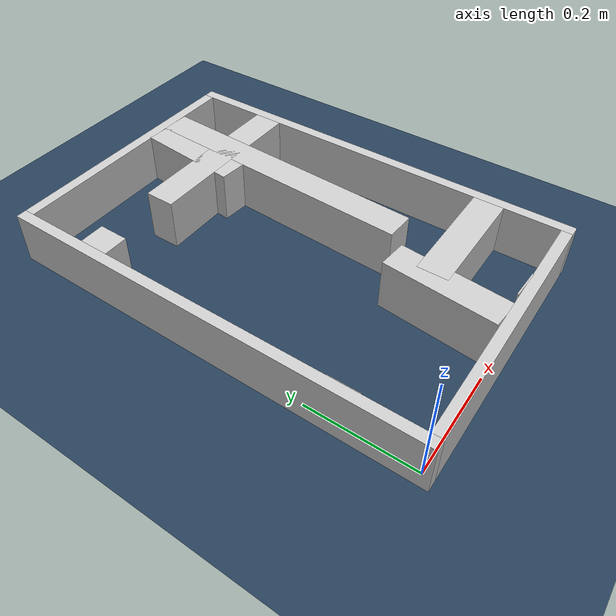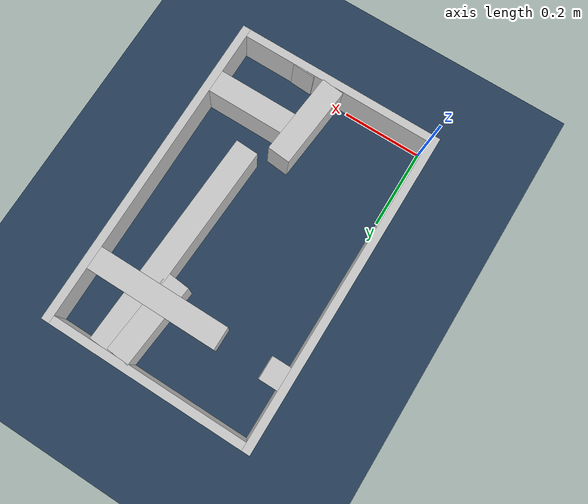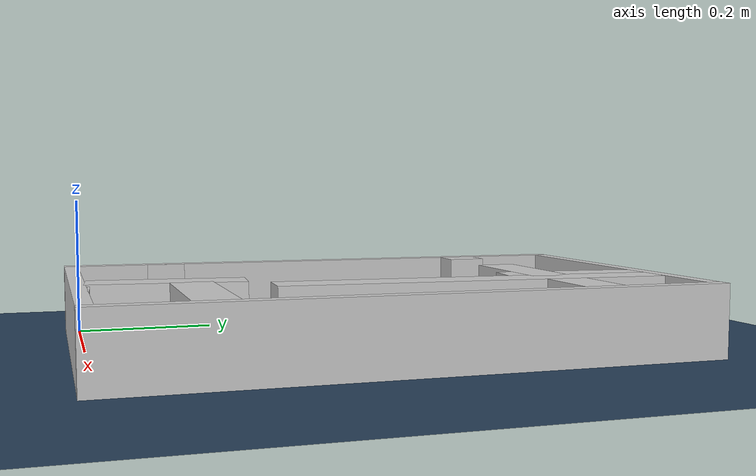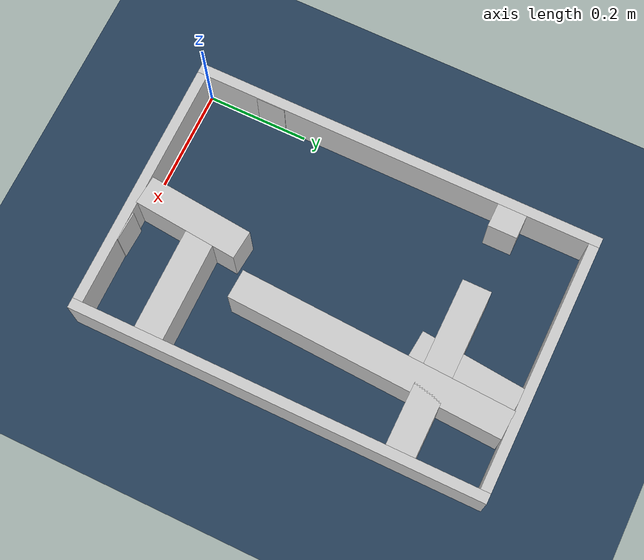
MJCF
<?xml version="1.0" ?>
<mujoco model="generated_real_template">
  <compiler angle="degree"/>
  <option timestep="0.002" integrator="implicitfast" iterations="100" cone="elliptic"/>
  <default>
    <geom density="1"/>
  </default>
  <asset>
    <texture builtin="gradient" height="3072" rgb1="0.3 0.5 0.7" rgb2="0 0 0" type="skybox" width="512"/>
    <texture builtin="checker" height="300" mark="edge" markrgb="0.8 0.8 0.8" name="groundplane" rgb1="0.2 0.3 0.4" rgb2="0.1 0.2 0.3" type="2d" width="300"/>
    <material name="groundplane" reflectance="0.2" texrepeat="5 5" texture="groundplane" texuniform="true"/>
  </asset>
  <worldbody>
    <light dir="0 0 -1" directional="true" pos="0 0 1.5"/>
    <geom name="floor" type="plane" condim="4" friction="0.5 0.005 0.001" material="groundplane" size="0 0 0.05"/>
    <body name="walls">
      <geom name="wall_boundary_left" type="box" condim="4" friction="1.0 0.005 0.0001" rgba="0.8 0.8 0.8 1" pos="-0.010000 0.387500 0.050000" euler="0 0 0.000000" size="0.010000 0.407500 0.050000"/>
      <geom name="wall_boundary_right" type="box" condim="4" friction="1.0 0.005 0.0001" rgba="0.8 0.8 0.8 1" pos="0.500000 0.387500 0.050000" euler="0 0 0.000000" size="0.010000 0.407500 0.050000"/>
      <geom name="wall_boundary_bottom" type="box" condim="4" friction="1.0 0.005 0.0001" rgba="0.8 0.8 0.8 1" pos="0.245000 -0.010000 0.050000" euler="0 0 0.000000" size="0.245000 0.010000 0.050000"/>
      <geom name="wall_boundary_top" type="box" condim="4" friction="1.0 0.005 0.0001" rgba="0.8 0.8 0.8 1" pos="0.245000 0.785000 0.050000" euler="0 0 0.000000" size="0.245000 0.010000 0.050000"/>
      <geom name="wall_inner_1_1" type="box" condim="4" friction="1.0 0.005 0.0001" rgba="0.8 0.8 0.8 1" pos="0.000549 0.133095 0.050000" euler="0 0 0.000000" size="0.000549 0.028500 0.050000"/>
      <geom name="wall_inner_1_2" type="box" condim="4" friction="1.0 0.005 0.0001" rgba="0.8 0.8 0.8 1" pos="0.378787 0.133095 0.050000" euler="0 0 0.000000" size="0.111213 0.028500 0.050000"/>
      <geom name="wall_inner_2_1" type="box" condim="4" friction="1.0 0.005 0.0001" rgba="0.8 0.8 0.8 1" pos="0.355027 0.502897 0.050000" euler="0 0 -92.812352" size="0.272431 0.028500 0.050000"/>
      <geom name="wall_inner_2_2" type="box" condim="4" friction="1.0 0.005 0.0001" rgba="0.8 0.8 0.8 1" pos="0.330388 0.001325 0.050000" euler="0 0 -92.812352" size="0.001327 0.028500 0.050000"/>
      <geom name="wall_inner_3_1" type="box" condim="4" friction="1.0 0.005 0.0001" rgba="0.8 0.8 0.8 1" pos="0.023390 0.624579 0.050000" euler="0 0 0.000000" size="0.023390 0.028500 0.050000"/>
      <geom name="wall_inner_3_2" type="box" condim="4" friction="1.0 0.005 0.0001" rgba="0.8 0.8 0.8 1" pos="0.324726 0.624579 0.050000" euler="0 0 0.000000" size="0.165274 0.028500 0.050000"/>
      <geom name="wall_inner_4_1" type="box" condim="4" friction="1.0 0.005 0.0001" rgba="0.8 0.8 0.8 1" pos="0.262229 0.104349 0.050000" euler="0 0 84.622373" size="0.104811 0.028500 0.050000"/>
      <geom name="wall_inner_4_2" type="box" condim="4" friction="1.0 0.005 0.0001" rgba="0.8 0.8 0.8 1" pos="0.315645 0.671803 0.050000" euler="0 0 84.622373" size="0.103653 0.028500 0.050000"/>
    </body>
  </worldbody>
</mujoco>
